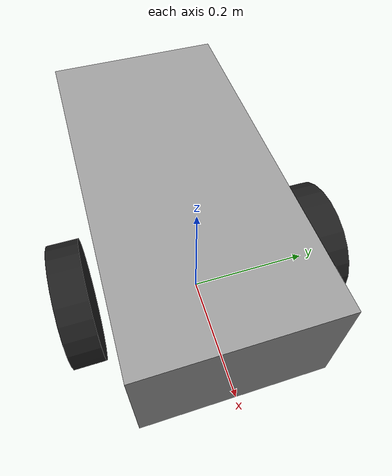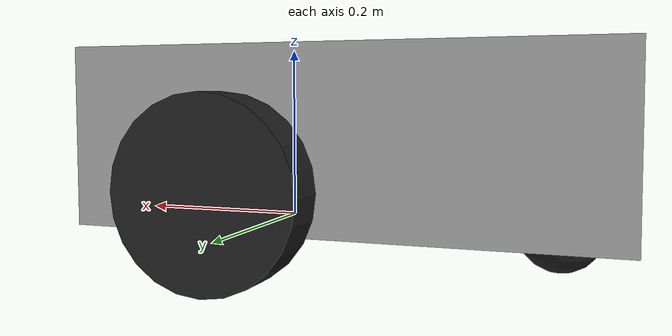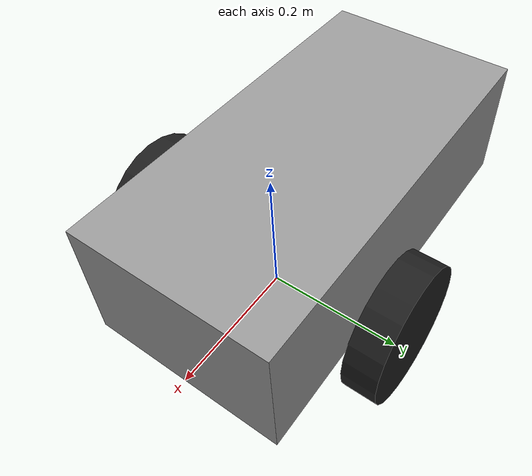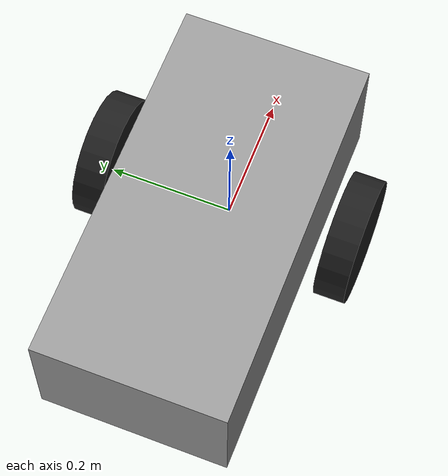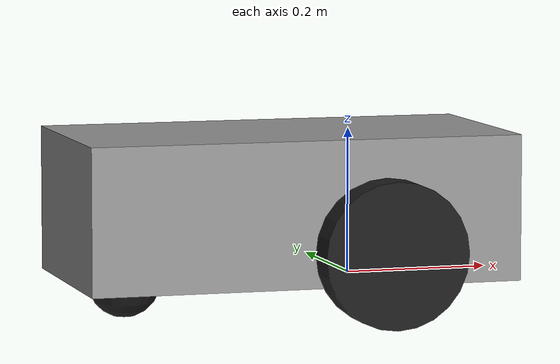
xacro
<?xml version="1.0"?>

<robot xmlns:xacro="http://www.ros.org/wiki/xacro"
       name="diff_drive_robot">

  <!-- Parameters                                                 -->

  <!-- Robot body -->
  <xacro:property name="body_length" value="0.60"/>
  <xacro:property name="body_width"  value="0.30"/>
  <xacro:property name="body_height" value="0.20"/>

  <!-- Differential-drive geometry -->
  <!-- s = distance between left and right wheel centers -->
  <xacro:property name="s" value="0.4"/>

  <!-- Wheels -->
  <xacro:property name="wheel_radius" value="0.10"/>
  <xacro:property name="wheel_width"  value="0.05"/>

  <!-- Low-friction fixed front support sphere -->
  <xacro:property name="caster_sphere_radius" value="0.05"/>
  <xacro:property name="caster_sphere_mass" value="0.20"/>
  <xacro:property name="caster_sphere_x"
                  value="0.32"/>
  <!-- Sphere bottom matches the drive wheels' contact height. -->
  <xacro:property name="caster_sphere_z"
                  value="${wheel_radius / 2 - caster_sphere_radius}"/>

  <!-- Masses -->
  <xacro:property name="body_mass"  value="5.0"/>
  <xacro:property name="wheel_mass" value="0.5"/>

  <!-- Base Link                                                   -->

  <link name="base_link">

    <visual>
      <!-- Put the bottom of the body at z = 0 -->
      <origin xyz="-0.1 0 ${body_height/2}" rpy="0 0 0"/>

      <geometry>
        <box size="${body_length} ${body_width} ${body_height}"/>
      </geometry>
    </visual>

    <collision>
      <origin xyz="-0.1 0 ${body_height/2}" rpy="0 0 0"/>

      <geometry>
        <box size="${body_length} ${body_width} ${body_height}"/>
      </geometry>
    </collision>

    <inertial>
      <origin xyz="-0.1 0 ${body_height/2}" rpy="0 0 0"/>

      <mass value="${body_mass}"/>

      <!-- Box inertia -->
      <inertia
        ixx="${body_mass * (body_width*body_width + body_height*body_height) / 12}"
        ixy="0.0"
        ixz="0.0"
        iyy="${body_mass * (body_length*body_length + body_height*body_height) / 12}"
        iyz="0.0"
        izz="${body_mass * (body_length*body_length + body_width*body_width) / 12}"/>
    </inertial>

  </link>

  <!-- Left Wheel                                                  -->

  <link name="left_wheel_link">

    <visual>
      <!-- Cylinder axis is normally Z.
           Rotate it so the wheel axle is along Y. -->
      <origin xyz="0 0 0" rpy="${pi/2} 0 0"/>

      <geometry>
        <cylinder radius="${wheel_radius}"
                  length="${wheel_width}"/>
      </geometry>
    </visual>

    <collision>
      <origin xyz="0 0 0" rpy="${pi/2} 0 0"/>

      <geometry>
        <cylinder radius="${wheel_radius}"
                  length="${wheel_width}"/>
      </geometry>
    </collision>

    <inertial>
      <origin xyz="0 0 0" rpy="0 0 0"/>

      <mass value="${wheel_mass}"/>

      <!-- Solid cylinder whose axis is Y -->
      <inertia
        ixx="${wheel_mass * (3*wheel_radius*wheel_radius + wheel_width*wheel_width) / 12}"
        ixy="0.0"
        ixz="0.0"
        iyy="${wheel_mass * wheel_radius*wheel_radius / 2}"
        iyz="0.0"
        izz="${wheel_mass * (3*wheel_radius*wheel_radius + wheel_width*wheel_width) / 12}"/>
    </inertial>

  </link>

  <!-- Right Wheel                                                 -->

  <link name="right_wheel_link">

    <visual>
      <origin xyz="0 0 0" rpy="${pi/2} 0 0"/>

      <geometry>
        <cylinder radius="${wheel_radius}"
                  length="${wheel_width}"/>
      </geometry>
    </visual>

    <collision>
      <origin xyz="0 0 0" rpy="${pi/2} 0 0"/>

      <geometry>
        <cylinder radius="${wheel_radius}"
                  length="${wheel_width}"/>
      </geometry>
    </collision>

    <inertial>
      <origin xyz="0 0 0" rpy="0 0 0"/>

      <mass value="${wheel_mass}"/>

      <inertia
        ixx="${wheel_mass * (3*wheel_radius*wheel_radius + wheel_width*wheel_width) / 12}"
        ixy="0.0"
        ixz="0.0"
        iyy="${wheel_mass * wheel_radius*wheel_radius / 2}"
        iyz="0.0"
        izz="${wheel_mass * (3*wheel_radius*wheel_radius + wheel_width*wheel_width) / 12}"/>
    </inertial>

  </link>

  <!-- Fixed Low-Friction Front Sphere                           -->

  <link name="caster_sphere_link">
    <visual>
      <geometry>
        <sphere radius="${caster_sphere_radius}"/>
      </geometry>
    </visual>
    <collision>
      <geometry>
        <sphere radius="${caster_sphere_radius}"/>
      </geometry>
    </collision>
    <inertial>
      <mass value="${caster_sphere_mass}"/>
      <inertia
        ixx="${2 * caster_sphere_mass * caster_sphere_radius *
               caster_sphere_radius / 5}"
        ixy="0.0" ixz="0.0"
        iyy="${2 * caster_sphere_mass * caster_sphere_radius *
               caster_sphere_radius / 5}"
        iyz="0.0"
        izz="${2 * caster_sphere_mass * caster_sphere_radius *
               caster_sphere_radius / 5}"/>
    </inertial>
  </link>

  <!-- Left Wheel Joint                                            -->

  <joint name="left_wheel_joint"
         type="continuous">

    <parent link="base_link"/>
    <child link="left_wheel_link"/>

    <!-- Wheel center -->
    <origin xyz="0 ${s/2} ${wheel_radius/2}"
            rpy="0 0 0"/>

    <!-- Wheel rotates around Y -->
    <axis xyz="0 1 0"/>

  </joint>

  <!-- Right Wheel Joint                                           -->

  <joint name="right_wheel_joint"
         type="continuous">

    <parent link="base_link"/>
    <child link="right_wheel_link"/>

    <!-- Wheel center -->
    <origin xyz="0 -${s/2} ${wheel_radius/2}"
            rpy="0 0 0"/>

    <!-- Wheel rotates around Y -->
    <axis xyz="0 1 0"/>

  </joint>

  <joint name="caster_sphere_joint" type="fixed">
    <parent link="base_link"/>
    <child link="caster_sphere_link"/>
    <origin xyz="-${caster_sphere_x} 0 ${caster_sphere_z}" rpy="0 0 0"/>
  </joint>

  <xacro:include filename="$(find diff_drive_robot)/urdf/gazebo.xacro"/>

</robot>
